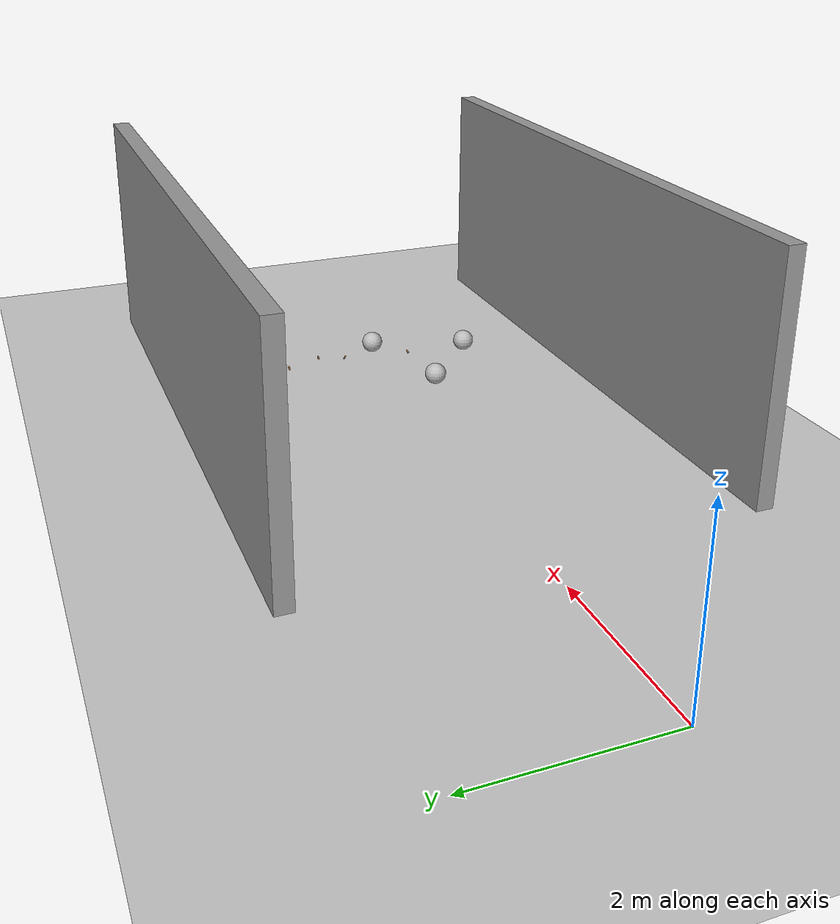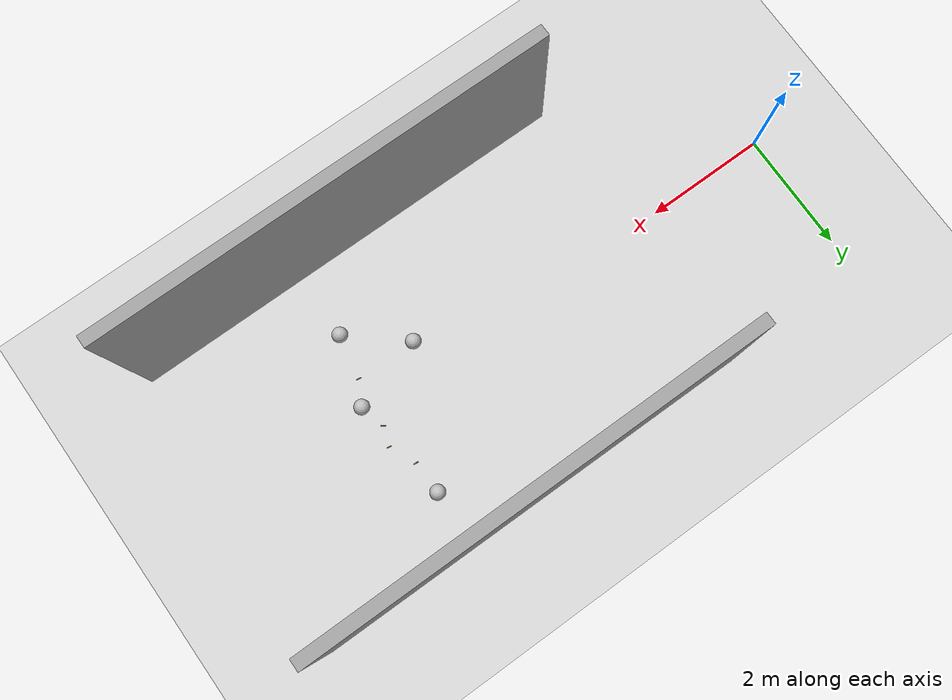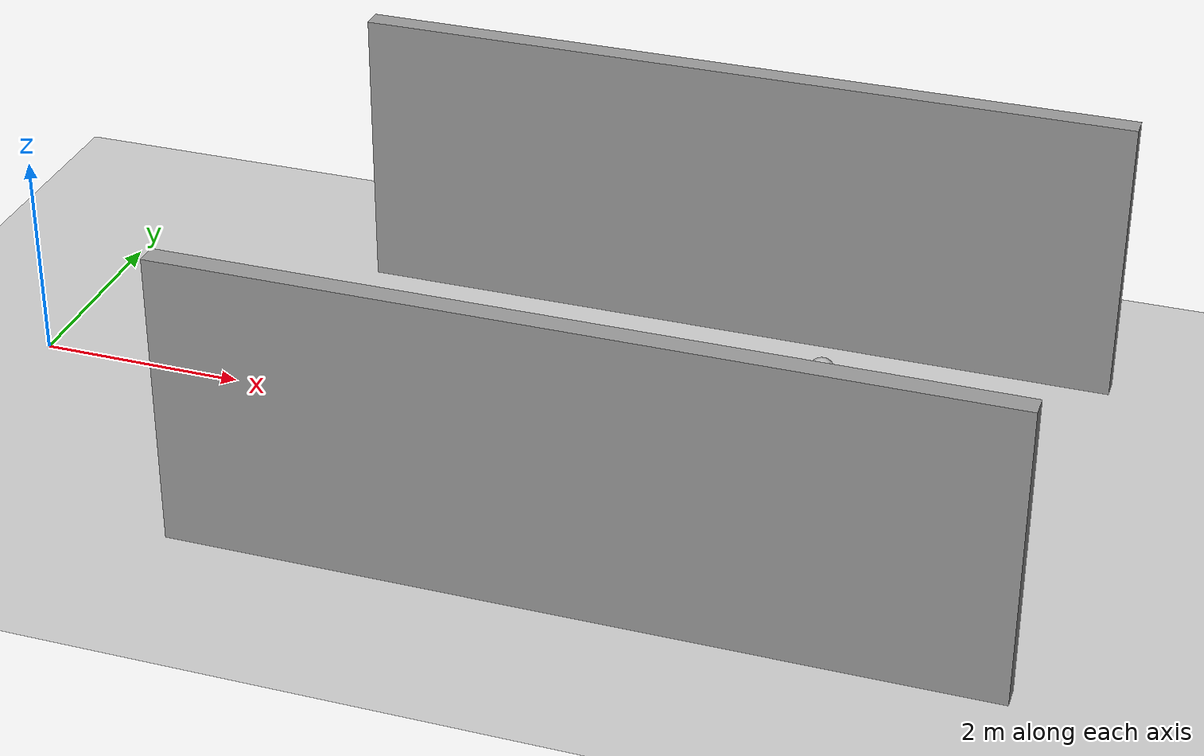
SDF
<sdf version="1.6">
 <world name="default">
  <model name="ground_plane">
   <static>1</static>
   <link name="link">
    <collision name="collision">
     <geometry><plane><normal>0 0 1</normal><size>100 100</size></plane></geometry>
     <surface><friction><ode><mu>100</mu><mu2>50</mu2></ode></friction></surface>
    </collision>
    <visual name="visual">
     <cast_shadows>0</cast_shadows>
     <geometry><plane><normal>0 0 1</normal><size>100 100</size></plane></geometry>
     <material>
      <script><uri>file://media/materials/scripts/gazebo.material</uri><name>Gazebo/Grey</name></script>
     </material>
    </visual>
   </link>
  </model>
  <model name="grey_wall_clone_1">
   <static>1</static>
   <link name="link">
    <pose>0 0 1.4 0 -0 0</pose>
    <collision name="collision"><geometry><box><size>7.5 0.2 2.8</size></box></geometry></collision>
    <visual name="visual">
     <cast_shadows>0</cast_shadows>
     <geometry><box><size>7.5 0.2 2.8</size></box></geometry>
     <material>
      <script>
       <uri>model://grey_wall/materials/scripts</uri>
       <uri>model://grey_wall/materials/textures</uri>
       <name>vrc/grey_wall</name>
      </script>
     </material>
    </visual>
   </link>
   <pose>6.25 2.5 0 0 -0 0</pose>
  </model>
  <model name="grey_wall_clone_3">
   <static>1</static>
   <link name="link">
    <pose>0 0 1.4 0 -0 0</pose>
    <collision name="collision"><geometry><box><size>7.5 0.2 2.8</size></box></geometry></collision>
    <visual name="visual">
     <cast_shadows>0</cast_shadows>
     <geometry><box><size>7.5 0.2 2.8</size></box></geometry>
     <material>
      <script>
       <uri>model://grey_wall/materials/scripts</uri>
       <uri>model://grey_wall/materials/textures</uri>
       <name>vrc/grey_wall</name>
      </script>
     </material>
    </visual>
   </link>
   <pose>6.25 -2.5 0 0 -0 0</pose>
  </model>
  <model name="wooden_peg_clone">
   <link name="link">
    <pose>0 0 0.04 0 -0 0</pose>
    <inertial>
     <mass>0.0175</mass>
     <inertia>
      <ixx>9.74923e-06</ixx>
      <ixy>0</ixy>
      <ixz>0</ixz>
      <iyy>9.74923e-06</iyy>
      <iyz>0</iyz>
      <izz>8.31797e-07</izz>
     </inertia>
    </inertial>
    <collision name="collision">
     <geometry><cylinder><radius>0.00975</radius><length>0.08</length></cylinder></geometry>
     <surface>
      <contact>
       <poissons_ratio>0.347</poissons_ratio>
       <elastic_modulus>8.8e+09</elastic_modulus>
       <ode><kp>100000</kp><kd>100</kd><max_vel>100</max_vel><min_depth>0.001</min_depth></ode>
      </contact>
      <friction>
       <torsional>
        <coefficient>1</coefficient>
        <use_patch_radius>0</use_patch_radius>
        <surface_radius>0.01</surface_radius>
       </torsional>
      </friction>
     </surface>
    </collision>
    <visual name="visual">
     <geometry><cylinder><radius>0.00975</radius><length>0.08</length></cylinder></geometry>
     <material>
      <script><uri>file://media/materials/scripts/gazebo.material</uri><name>Gazebo/Wood</name></script>
     </material>
    </visual>
   </link>
   <pose>7.54459 0.605667 0.109637 1.57201 0.087687 1.42918</pose>
  </model>
  <model name="wooden_peg_clone_3">
   <link name="link">
    <pose>0 0 0.04 0 -0 0</pose>
    <inertial>
     <mass>0.0175</mass>
     <inertia>
      <ixx>9.74923e-06</ixx>
      <ixy>0</ixy>
      <ixz>0</ixz>
      <iyy>9.74923e-06</iyy>
      <iyz>0</iyz>
      <izz>8.31797e-07</izz>
     </inertia>
    </inertial>
    <collision name="collision">
     <geometry><cylinder><radius>0.00975</radius><length>0.08</length></cylinder></geometry>
     <surface>
      <contact>
       <poissons_ratio>0.347</poissons_ratio>
       <elastic_modulus>8.8e+09</elastic_modulus>
       <ode><kp>100000</kp><kd>100</kd><max_vel>100</max_vel><min_depth>0.001</min_depth></ode>
      </contact>
      <friction>
       <torsional>
        <coefficient>1</coefficient>
        <use_patch_radius>0</use_patch_radius>
        <surface_radius>0.01</surface_radius>
       </torsional>
      </friction>
     </surface>
    </collision>
    <visual name="visual">
     <geometry><cylinder><radius>0.00975</radius><length>0.08</length></cylinder></geometry>
     <material>
      <script><uri>file://media/materials/scripts/gazebo.material</uri><name>Gazebo/Wood</name></script>
     </material>
    </visual>
   </link>
   <pose>7.50683 0.256961 0.108749 1.56184 -1.36864 -2.1214</pose>
  </model>
  <model name="wooden_peg_clone_4">
   <link name="link">
    <pose>0 0 0.04 0 -0 0</pose>
    <inertial>
     <mass>0.0175</mass>
     <inertia>
      <ixx>9.74923e-06</ixx>
      <ixy>0</ixy>
      <ixz>0</ixz>
      <iyy>9.74923e-06</iyy>
      <iyz>0</iyz>
      <izz>8.31797e-07</izz>
     </inertia>
    </inertial>
    <collision name="collision">
     <geometry><cylinder><radius>0.00975</radius><length>0.08</length></cylinder></geometry>
     <surface>
      <contact>
       <poissons_ratio>0.347</poissons_ratio>
       <elastic_modulus>8.8e+09</elastic_modulus>
       <ode><kp>100000</kp><kd>100</kd><max_vel>100</max_vel><min_depth>0.001</min_depth></ode>
      </contact>
      <friction>
       <torsional>
        <coefficient>1</coefficient>
        <use_patch_radius>0</use_patch_radius>
        <surface_radius>0.01</surface_radius>
       </torsional>
      </friction>
     </surface>
    </collision>
    <visual name="visual">
     <geometry><cylinder><radius>0.00975</radius><length>0.08</length></cylinder></geometry>
     <material>
      <script><uri>file://media/materials/scripts/gazebo.material</uri><name>Gazebo/Wood</name></script>
     </material>
    </visual>
   </link>
   <pose>7.43391 1.03389 0.108749 -1.235 -1.55791 1.09201</pose>
  </model>
  <model name="wooden_peg_clone_14">
   <link name="link">
    <pose>0 0 0.04 0 -0 0</pose>
    <inertial>
     <mass>0.0175</mass>
     <inertia>
      <ixx>9.74923e-06</ixx>
      <ixy>0</ixy>
      <ixz>0</ixz>
      <iyy>9.74923e-06</iyy>
      <iyz>0</iyz>
      <izz>8.31797e-07</izz>
     </inertia>
    </inertial>
    <collision name="collision">
     <geometry><cylinder><radius>0.00975</radius><length>0.08</length></cylinder></geometry>
     <surface>
      <contact>
       <poissons_ratio>0.347</poissons_ratio>
       <elastic_modulus>8.8e+09</elastic_modulus>
       <ode><kp>100000</kp><kd>100</kd><max_vel>100</max_vel><min_depth>0.001</min_depth></ode>
      </contact>
      <friction>
       <torsional>
        <coefficient>1</coefficient>
        <use_patch_radius>0</use_patch_radius>
        <surface_radius>0.01</surface_radius>
       </torsional>
      </friction>
     </surface>
    </collision>
    <visual name="visual">
     <geometry><cylinder><radius>0.00975</radius><length>0.08</length></cylinder></geometry>
     <material>
      <script><uri>file://media/materials/scripts/gazebo.material</uri><name>Gazebo/Wood</name></script>
     </material>
    </visual>
   </link>
   <pose>7.40746 -0.54829 0.108749 -1.235 -1.55791 1.09201</pose>
  </model>
  <model name="frc2016_ball">
   <pose>7.21605 -1.25857 0.226693 0 -0 0</pose>
   <link name="link">
    <inertial>
     <mass>0.213</mass>
     <inertia>
      <ixx>0.00322667</ixx>
      <ixy>0</ixy>
      <ixz>0</ixz>
      <iyy>0.00322667</iyy>
      <iyz>0</iyz>
      <izz>0.00322667</izz>
     </inertia>
    </inertial>
    <visual name="visual"><geometry><sphere><radius>0.127</radius></sphere></geometry></visual>
    <collision name="collision">
     <geometry><sphere><radius>0.127</radius></sphere></geometry>
     <surface>
      <bounce><restitution_coefficient>0.15937</restitution_coefficient><threshold>0</threshold></bounce>
      <contact><ode><max_vel>100</max_vel><min_depth>0.001</min_depth></ode></contact>
     </surface>
    </collision>
   </link>
  </model>
  <model name="frc2016_ball_clone_1">
   <pose>6.34991 -0.513097 0.226676 0 -0 0</pose>
   <link name="link">
    <inertial>
     <mass>0.213</mass>
     <inertia>
      <ixx>0.00322667</ixx>
      <ixy>0</ixy>
      <ixz>0</ixz>
      <iyy>0.00322667</iyy>
      <iyz>0</iyz>
      <izz>0.00322667</izz>
     </inertia>
    </inertial>
    <visual name="visual"><geometry><sphere><radius>0.127</radius></sphere></geometry></visual>
    <collision name="collision">
     <geometry><sphere><radius>0.127</radius></sphere></geometry>
     <surface>
      <bounce><restitution_coefficient>0.15937</restitution_coefficient><threshold>0</threshold></bounce>
      <contact><ode><max_vel>100</max_vel><min_depth>0.001</min_depth></ode></contact>
     </surface>
    </collision>
   </link>
  </model>
  <model name="frc2016_ball_clone_2">
   <pose>7.37687 1.60159 0.226676 0 -0 0</pose>
   <link name="link">
    <inertial>
     <mass>0.213</mass>
     <inertia>
      <ixx>0.00322667</ixx>
      <ixy>0</ixy>
      <ixz>0</ixz>
      <iyy>0.00322667</iyy>
      <iyz>0</iyz>
      <izz>0.00322667</izz>
     </inertia>
    </inertial>
    <visual name="visual"><geometry><sphere><radius>0.127</radius></sphere></geometry></visual>
    <collision name="collision">
     <geometry><sphere><radius>0.127</radius></sphere></geometry>
     <surface>
      <bounce><restitution_coefficient>0.15937</restitution_coefficient><threshold>0</threshold></bounce>
      <contact><ode><max_vel>100</max_vel><min_depth>0.001</min_depth></ode></contact>
     </surface>
    </collision>
   </link>
  </model>
  <model name="frc2016_ball_clone_3">
   <pose>7.57538 -0.131162 0.226701 0.061879 -0.437164 0.542189</pose>
   <link name="link">
    <inertial>
     <mass>0.213</mass>
     <inertia>
      <ixx>0.00322667</ixx>
      <ixy>0</ixy>
      <ixz>0</ixz>
      <iyy>0.00322667</iyy>
      <iyz>0</iyz>
      <izz>0.00322667</izz>
     </inertia>
    </inertial>
    <visual name="visual"><geometry><sphere><radius>0.127</radius></sphere></geometry></visual>
    <collision name="collision">
     <geometry><sphere><radius>0.127</radius></sphere></geometry>
     <surface>
      <bounce><restitution_coefficient>0.15937</restitution_coefficient><threshold>0</threshold></bounce>
      <contact><ode><max_vel>100</max_vel><min_depth>0.001</min_depth></ode></contact>
     </surface>
    </collision>
   </link>
  </model>
 </world>
</sdf>
